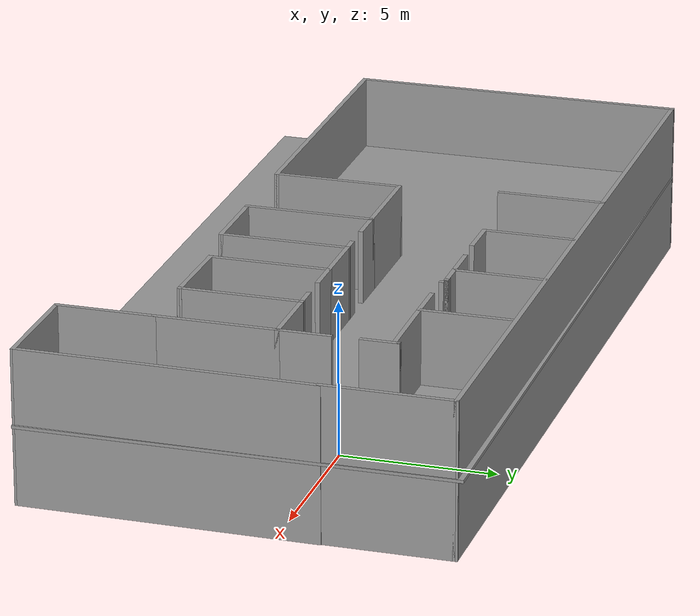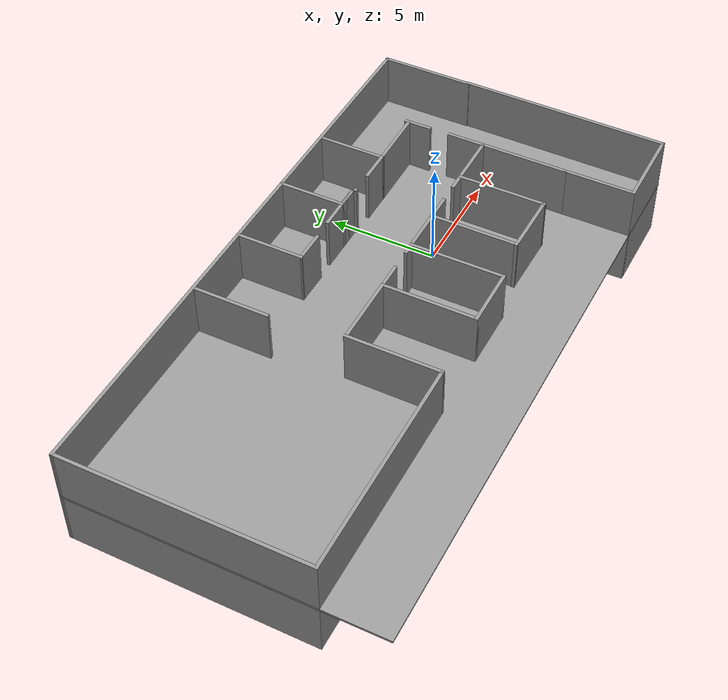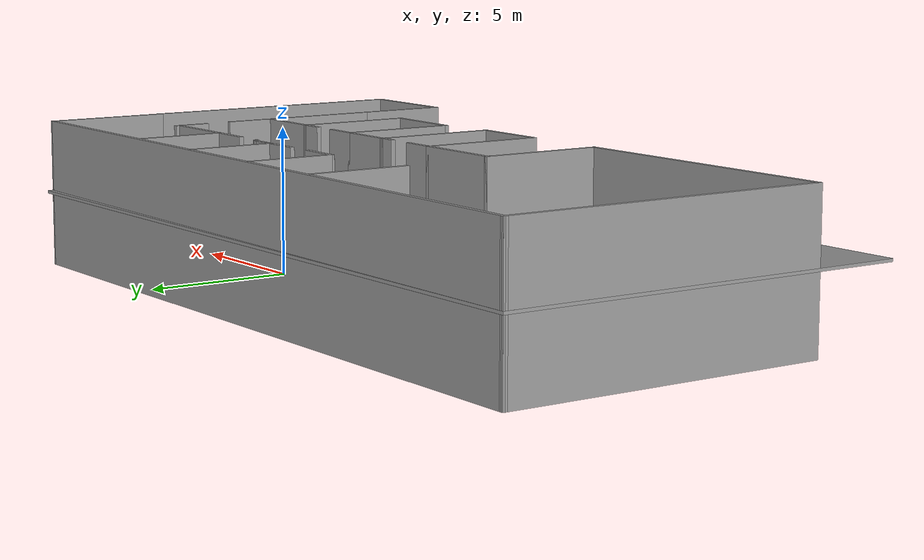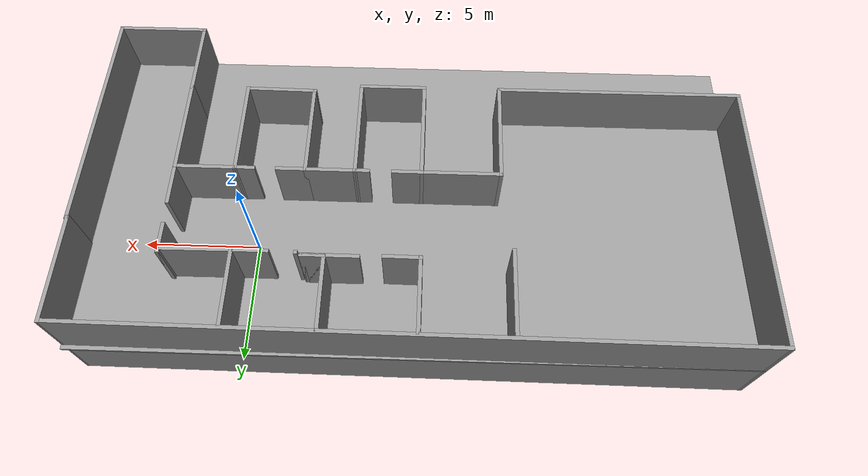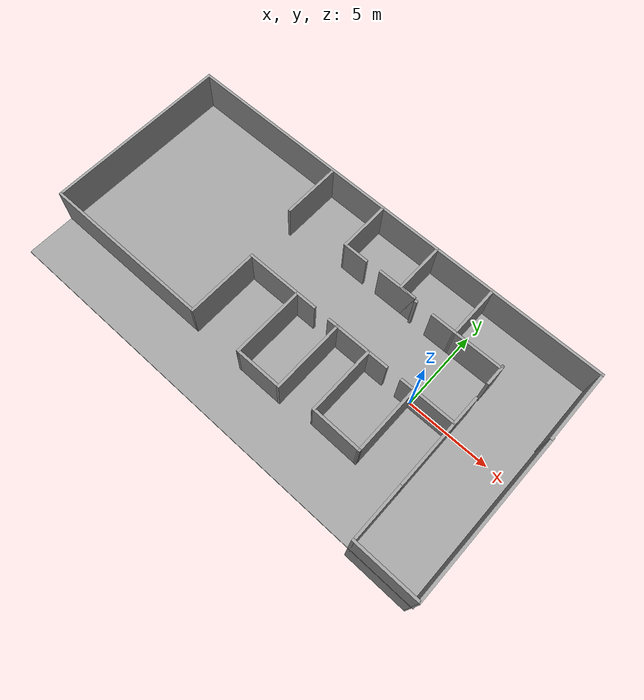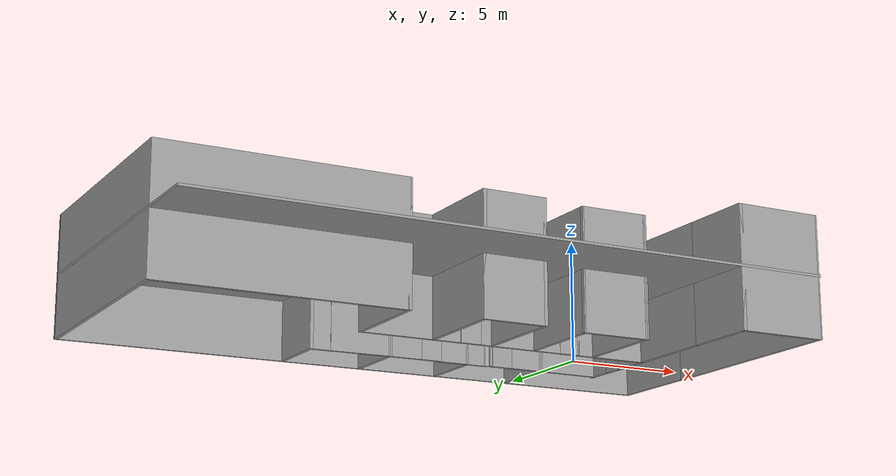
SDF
<?xml version='1.0'?>
<sdf version='1.6'>
  <model name='Bush_House_SW'>
    <pose frame=''>-6.86413 -1.22102 0 0 -0 0</pose>
    <link name='Door_0'>
      <collision name='Door_0_Collision'>
        <geometry>
          <box>
            <size>0.9 0.17 2</size>
          </box>
        </geometry>
        <pose frame=''>0 0 1 0 -0 0</pose>
      </collision>
      <visual name='Door_0_Visual'>
        <pose frame=''>0 0 1 0 -0 0</pose>
        <geometry>
          <box>
            <size>0.9 0.17 2</size>
          </box>
        </geometry>
        <material>
          <script>
            <uri>file://media/materials/scripts/gazebo.material</uri>
            <name>Gazebo/Grey</name>
          </script>
        </material>
      </visual>
      <pose frame=''>1.44722 0.128993 0 0 -0 0</pose>
    </link>
    <link name='Door_1'>
      <collision name='Door_1_Collision'>
        <geometry>
          <box>
            <size>0.9 0.17 2</size>
          </box>
        </geometry>
        <pose frame=''>0 0 1 0 -0 0</pose>
      </collision>
      <visual name='Door_1_Visual'>
        <pose frame=''>0 0 1 0 -0 0</pose>
        <geometry>
          <box>
            <size>0.9 0.17 2</size>
          </box>
        </geometry>
        <material>
          <script>
            <uri>file://media/materials/scripts/gazebo.material</uri>
            <name>Gazebo/Grey</name>
          </script>
        </material>
      </visual>
      <pose frame=''>5.96487 0.138665 0 0 -0 -3.1387</pose>
    </link>
    <link name='Door_4'>
      <collision name='Door_4_Collision'>
        <geometry>
          <box>
            <size>0.9 0.17 2</size>
          </box>
        </geometry>
        <pose frame=''>0 0 1 0 -0 0</pose>
      </collision>
      <visual name='Door_4_Visual'>
        <pose frame=''>0 0 1 0 -0 0</pose>
        <geometry>
          <box>
            <size>0.9 0.17 2</size>
          </box>
        </geometry>
        <material>
          <script>
            <uri>file://media/materials/scripts/gazebo.material</uri>
            <name>Gazebo/Grey</name>
          </script>
        </material>
      </visual>
      <pose frame=''>-3.21752 3.89519 0 0 -0 0</pose>
    </link>
    <link name='Door_5'>
      <collision name='Door_5_Collision'>
        <geometry>
          <box>
            <size>0.9 0.17 2</size>
          </box>
        </geometry>
        <pose frame=''>0 0 1 0 -0 0</pose>
      </collision>
      <visual name='Door_5_Visual'>
        <pose frame=''>0 0 1 0 -0 0</pose>
        <geometry>
          <box>
            <size>0.9 0.17 2</size>
          </box>
        </geometry>
        <material>
          <script>
            <uri>file://media/materials/scripts/gazebo.material</uri>
            <name>Gazebo/Grey</name>
          </script>
        </material>
      </visual>
      <pose frame=''>1.60947 3.76994 0 0 -0 0</pose>
    </link>
    <link name='Door_6'>
      <collision name='Door_6_Collision'>
        <geometry>
          <box>
            <size>0.925966 0.2 2</size>
          </box>
        </geometry>
        <pose frame=''>0 0 1 0 -0 0</pose>
      </collision>
      <visual name='Door_6_Visual'>
        <pose frame=''>0 0 1 0 -0 0</pose>
        <geometry>
          <box>
            <size>0.925966 0.2 2</size>
          </box>
        </geometry>
        <material>
          <script>
            <uri>file://media/materials/scripts/gazebo.material</uri>
            <name>Gazebo/Grey</name>
          </script>
        </material>
      </visual>
      <pose frame=''>4.88911 3.72219 0 0 0 -3.13904</pose>
    </link>
    <link name='Door_7'>
      <collision name='Door_7_Collision'>
        <geometry>
          <box>
            <size>0.9 0.17 2</size>
          </box>
        </geometry>
        <pose frame=''>0 0 1 0 -0 0</pose>
      </collision>
      <visual name='Door_7_Visual'>
        <pose frame=''>0 0 1 0 -0 0</pose>
        <geometry>
          <box>
            <size>0.9 0.17 2</size>
          </box>
        </geometry>
        <material>
          <script>
            <uri>file://media/materials/scripts/gazebo.material</uri>
            <name>Gazebo/Grey</name>
          </script>
        </material>
      </visual>
      <pose frame=''>9.46413 2.22202 0 0 -0 1.5781</pose>
    </link>
    <link name='Floor_0'>
      <collision name='Floor_0_Collision'>
        <geometry>
          <box>
            <size>26.4206 13.775 0.1</size>
          </box>
        </geometry>
        <pose frame=''>0 0 0.05 0 -0 0</pose>
      </collision>
      <visual name='Floor_0_Visual'>
        <pose frame=''>0 0 0.05 0 -0 0</pose>
        <geometry>
          <box>
            <size>26.4206 13.775 0.1</size>
          </box>
        </geometry>
        <material>
          <script>
            <uri>file://media/materials/scripts/gazebo.material</uri>
            <name>Gazebo/Grey</name>
          </script>
          <ambient>1 1 1 1</ambient>
        </material>
        <meta>
          <layer>1</layer>
        </meta>
      </visual>
      <pose frame=''>-0 -6.5e-05 2.5 0 -0 0</pose>
    </link>
    <link name='Wall_10'>
      <collision name='Wall_10_Collision'>
        <geometry>
          <box>
            <size>3.25 0.15 2.5</size>
          </box>
        </geometry>
        <pose frame=''>0 0 1.25 0 -0 0</pose>
      </collision>
      <visual name='Wall_10_Visual'>
        <pose frame=''>0 0 1.25 0 -0 0</pose>
        <geometry>
          <box>
            <size>3.25 0.15 2.5</size>
          </box>
        </geometry>
        <material>
          <script>
            <uri>file://media/materials/scripts/gazebo.material</uri>
            <name>Gazebo/Grey</name>
          </script>
          <ambient>1 1 1 1</ambient>
        </material>
        <meta>
          <layer>0</layer>
        </meta>
      </visual>
      <pose frame=''>-1.73481 0.138009 0 0 -0 0</pose>
    </link>
    <link name='Wall_100'>
      <collision name='Wall_100_Collision'>
        <geometry>
          <box>
            <size>2.74557 0.15 2.5</size>
          </box>
        </geometry>
        <pose frame=''>0 0 1.25 0 -0 0</pose>
      </collision>
      <visual name='Wall_100_Visual'>
        <pose frame=''>0 0 1.25 0 -0 0</pose>
        <geometry>
          <box>
            <size>2.74557 0.15 2.5</size>
          </box>
        </geometry>
        <material>
          <script>
            <uri>file://media/materials/scripts/gazebo.material</uri>
            <name>Gazebo/Grey</name>
          </script>
          <ambient>1 1 1 1</ambient>
        </material>
        <meta>
          <layer>1</layer>
        </meta>
      </visual>
      <pose frame=''>8.03611 3.70275 2.5 0 -0 0.005031</pose>
    </link>
    <link name='Wall_101'>
      <collision name='Wall_101_Collision'>
        <geometry>
          <box>
            <size>1.25 0.15 2.5</size>
          </box>
        </geometry>
        <pose frame=''>0 0 1.25 0 -0 0</pose>
      </collision>
      <visual name='Wall_101_Visual'>
        <pose frame=''>0 0 1.25 0 -0 0</pose>
        <geometry>
          <box>
            <size>1.25 0.15 2.5</size>
          </box>
        </geometry>
        <material>
          <script>
            <uri>file://media/materials/scripts/gazebo.material</uri>
            <name>Gazebo/Grey</name>
          </script>
          <ambient>1 1 1 1</ambient>
        </material>
        <meta>
          <layer>1</layer>
        </meta>
      </visual>
      <pose frame=''>0.365187 0.138009 2.5 0 -0 0</pose>
    </link>
    <link name='Wall_102'>
      <collision name='Wall_102_Collision'>
        <geometry>
          <box>
            <size>0.651972 0.15 2.5</size>
          </box>
        </geometry>
        <pose frame=''>0 0 1.25 0 -0 0</pose>
      </collision>
      <visual name='Wall_102_Visual'>
        <pose frame=''>0 0 1.25 0 -0 0</pose>
        <geometry>
          <box>
            <size>0.651972 0.15 2.5</size>
          </box>
        </geometry>
        <material>
          <script>
            <uri>file://media/materials/scripts/gazebo.material</uri>
            <name>Gazebo/Grey</name>
          </script>
          <ambient>1 1 1 1</ambient>
        </material>
        <meta>
          <layer>1</layer>
        </meta>
      </visual>
      <pose frame=''>2.16423 0.134475 2.5 0 -0 0.014081</pose>
    </link>
    <link name='Wall_103'>
      <collision name='Wall_103_Collision'>
        <geometry>
          <box>
            <size>1.25 0.15 2.5</size>
          </box>
        </geometry>
        <pose frame=''>0 0 1.25 0 -0 0</pose>
      </collision>
      <visual name='Wall_103_Visual'>
        <pose frame=''>0 0 1.25 0 -0 0</pose>
        <geometry>
          <box>
            <size>1.25 0.15 2.5</size>
          </box>
        </geometry>
        <material>
          <script>
            <uri>file://media/materials/scripts/gazebo.material</uri>
            <name>Gazebo/Grey</name>
          </script>
          <ambient>1 1 1 1</ambient>
        </material>
        <meta>
          <layer>1</layer>
        </meta>
      </visual>
      <pose frame=''>4.90753 0.138009 2.5 0 -0 0</pose>
    </link>
    <link name='Wall_104'>
      <collision name='Wall_104_Collision'>
        <geometry>
          <box>
            <size>0.85758 0.15 2.5</size>
          </box>
        </geometry>
        <pose frame=''>0 0 1.25 0 -0 0</pose>
      </collision>
      <visual name='Wall_104_Visual'>
        <pose frame=''>0 0 1.25 0 -0 0</pose>
        <geometry>
          <box>
            <size>0.85758 0.15 2.5</size>
          </box>
        </geometry>
        <material>
          <script>
            <uri>file://media/materials/scripts/gazebo.material</uri>
            <name>Gazebo/Grey</name>
          </script>
          <ambient>1 1 1 1</ambient>
        </material>
        <meta>
          <layer>1</layer>
        </meta>
      </visual>
      <pose frame=''>6.76142 0.134038 2.5 0 -0 0.011223</pose>
    </link>
    <link name='Wall_105'>
      <collision name='Wall_105_Collision'>
        <geometry>
          <box>
            <size>1.75 0.15 2.5</size>
          </box>
        </geometry>
        <pose frame=''>0 0 1.25 0 -0 0</pose>
      </collision>
      <visual name='Wall_105_Visual'>
        <pose frame=''>0 0 1.25 0 -0 0</pose>
        <geometry>
          <box>
            <size>1.75 0.15 2.5</size>
          </box>
        </geometry>
        <material>
          <script>
            <uri>file://media/materials/scripts/gazebo.material</uri>
            <name>Gazebo/Grey</name>
          </script>
          <ambient>1 1 1 1</ambient>
        </material>
        <meta>
          <layer>1</layer>
        </meta>
      </visual>
      <pose frame=''>9.46519 0.938009 2.5 0 -0 1.5708</pose>
    </link>
    <link name='Wall_106'>
      <collision name='Wall_106_Collision'>
        <geometry>
          <box>
            <size>1.25 0.15 2.5</size>
          </box>
        </geometry>
        <pose frame=''>0 0 1.25 0 -0 0</pose>
      </collision>
      <visual name='Wall_106_Visual'>
        <pose frame=''>0 0 1.25 0 -0 0</pose>
        <geometry>
          <box>
            <size>1.25 0.15 2.5</size>
          </box>
        </geometry>
        <material>
          <script>
            <uri>file://media/materials/scripts/gazebo.material</uri>
            <name>Gazebo/Grey</name>
          </script>
          <ambient>1 1 1 1</ambient>
        </material>
        <meta>
          <layer>1</layer>
        </meta>
      </visual>
      <pose frame=''>9.44039 3.27264 2.5 0 -0 1.5708</pose>
    </link>
    <link name='Wall_107'>
      <collision name='Wall_107_Collision'>
        <geometry>
          <box>
            <size>0.15 0.15 2.5</size>
          </box>
        </geometry>
        <pose frame=''>0 0 1.25 0 -0 0</pose>
      </collision>
      <visual name='Wall_107_Visual'>
        <pose frame=''>0 0 1.25 0 -0 0</pose>
        <geometry>
          <box>
            <size>0.15 0.15 2.5</size>
          </box>
        </geometry>
        <material>
          <script>
            <uri>file://media/materials/scripts/gazebo.material</uri>
            <name>Gazebo/Grey</name>
          </script>
          <ambient>1 1 1 1</ambient>
        </material>
        <meta>
          <layer>1</layer>
        </meta>
      </visual>
      <pose frame=''>9.4347 3.82264 2.5 0 -0 0</pose>
    </link>
    <link name='Wall_108'>
      <collision name='Wall_108_Collision'>
        <geometry>
          <box>
            <size>1.475 0.15 2.5</size>
          </box>
        </geometry>
        <pose frame=''>0 0 1.25 0 -0 0</pose>
      </collision>
      <visual name='Wall_108_Visual'>
        <pose frame=''>0 0 1.25 0 -0 0</pose>
        <geometry>
          <box>
            <size>1.475 0.15 2.5</size>
          </box>
        </geometry>
        <material>
          <script>
            <uri>file://media/materials/scripts/gazebo.material</uri>
            <name>Gazebo/Grey</name>
          </script>
          <ambient>1 1 1 1</ambient>
        </material>
        <meta>
          <layer>1</layer>
        </meta>
      </visual>
      <pose frame=''>6.07585 3.69622 2.5 0 -0 3.14159</pose>
    </link>
    <link name='Wall_109'>
      <collision name='Wall_109_Collision'>
        <geometry>
          <box>
            <size>0.15 0.15 2.5</size>
          </box>
        </geometry>
        <pose frame=''>0 0 1.25 0 -0 0</pose>
      </collision>
      <visual name='Wall_109_Visual'>
        <pose frame=''>0 0 1.25 0 -0 0</pose>
        <geometry>
          <box>
            <size>0.15 0.15 2.5</size>
          </box>
        </geometry>
        <material>
          <script>
            <uri>file://media/materials/scripts/gazebo.material</uri>
            <name>Gazebo/Grey</name>
          </script>
          <ambient>1 1 1 1</ambient>
        </material>
        <meta>
          <layer>1</layer>
        </meta>
      </visual>
      <pose frame=''>4.35279 3.71333 2.5 0 -0 0</pose>
    </link>
    <link name='Wall_11'>
      <collision name='Wall_11_Collision'>
        <geometry>
          <box>
            <size>4.25 0.15 2.5</size>
          </box>
        </geometry>
        <pose frame=''>0 0 1.25 0 -0 0</pose>
      </collision>
      <visual name='Wall_11_Visual'>
        <pose frame=''>0 0 1.25 0 -0 0</pose>
        <geometry>
          <box>
            <size>4.25 0.15 2.5</size>
          </box>
        </geometry>
        <material>
          <script>
            <uri>file://media/materials/scripts/gazebo.material</uri>
            <name>Gazebo/Grey</name>
          </script>
          <ambient>1 1 1 1</ambient>
        </material>
        <meta>
          <layer>0</layer>
        </meta>
      </visual>
      <pose frame=''>-0.184813 -1.91199 0 0 -0 -1.5708</pose>
    </link>
    <link name='Wall_110'>
      <collision name='Wall_110_Collision'>
        <geometry>
          <box>
            <size>1.50008 0.15 2.5</size>
          </box>
        </geometry>
        <pose frame=''>0 0 1.25 0 -0 0</pose>
      </collision>
      <visual name='Wall_110_Visual'>
        <pose frame=''>0 0 1.25 0 -0 0</pose>
        <geometry>
          <box>
            <size>1.50008 0.15 2.5</size>
          </box>
        </geometry>
        <material>
          <script>
            <uri>file://media/materials/scripts/gazebo.material</uri>
            <name>Gazebo/Grey</name>
          </script>
          <ambient>1 1 1 1</ambient>
        </material>
        <meta>
          <layer>1</layer>
        </meta>
      </visual>
      <pose frame=''>0.417575 3.78597 2.5 0 -0 -0.01055</pose>
    </link>
    <link name='Wall_111'>
      <collision name='Wall_111_Collision'>
        <geometry>
          <box>
            <size>2.25 0.15 2.5</size>
          </box>
        </geometry>
        <pose frame=''>0 0 1.25 0 -0 0</pose>
      </collision>
      <visual name='Wall_111_Visual'>
        <pose frame=''>0 0 1.25 0 -0 0</pose>
        <geometry>
          <box>
            <size>2.25 0.15 2.5</size>
          </box>
        </geometry>
        <material>
          <script>
            <uri>file://media/materials/scripts/gazebo.material</uri>
            <name>Gazebo/Grey</name>
          </script>
          <ambient>1 1 1 1</ambient>
        </material>
        <meta>
          <layer>1</layer>
        </meta>
      </visual>
      <pose frame=''>3.10253 3.81133 2.5 0 -0 0</pose>
    </link>
    <link name='Wall_112'>
      <collision name='Wall_112_Collision'>
        <geometry>
          <box>
            <size>0.15 0.15 2.5</size>
          </box>
        </geometry>
        <pose frame=''>0 0 1.25 0 -0 0</pose>
      </collision>
      <visual name='Wall_112_Visual'>
        <pose frame=''>0 0 1.25 0 -0 0</pose>
        <geometry>
          <box>
            <size>0.15 0.15 2.5</size>
          </box>
        </geometry>
        <material>
          <script>
            <uri>file://media/materials/scripts/gazebo.material</uri>
            <name>Gazebo/Grey</name>
          </script>
          <ambient>1 1 1 1</ambient>
        </material>
        <meta>
          <layer>1</layer>
        </meta>
      </visual>
      <pose frame=''>4.15253 3.81133 2.5 0 -0 0</pose>
    </link>
    <link name='Wall_113'>
      <collision name='Wall_113_Collision'>
        <geometry>
          <box>
            <size>1 0.15 2.5</size>
          </box>
        </geometry>
        <pose frame=''>0 0 1.25 0 -0 0</pose>
      </collision>
      <visual name='Wall_113_Visual'>
        <pose frame=''>0 0 1.25 0 -0 0</pose>
        <geometry>
          <box>
            <size>1 0.15 2.5</size>
          </box>
        </geometry>
        <material>
          <script>
            <uri>file://media/materials/scripts/gazebo.material</uri>
            <name>Gazebo/Grey</name>
          </script>
          <ambient>1 1 1 1</ambient>
        </material>
        <meta>
          <layer>1</layer>
        </meta>
      </visual>
      <pose frame=''>3.72753 3.81133 2.5 0 -0 3.14159</pose>
    </link>
    <link name='Wall_114'>
      <collision name='Wall_114_Collision'>
        <geometry>
          <box>
            <size>3 0.15 2.5</size>
          </box>
        </geometry>
        <pose frame=''>0 0 1.25 0 -0 0</pose>
      </collision>
      <visual name='Wall_114_Visual'>
        <pose frame=''>0 0 1.25 0 -0 0</pose>
        <geometry>
          <box>
            <size>3 0.15 2.5</size>
          </box>
        </geometry>
        <material>
          <script>
            <uri>file://media/materials/scripts/gazebo.material</uri>
            <name>Gazebo/Grey</name>
          </script>
          <ambient>1 1 1 1</ambient>
        </material>
        <meta>
          <layer>1</layer>
        </meta>
      </visual>
      <pose frame=''>3.30253 5.23633 2.5 0 -0 1.5708</pose>
    </link>
    <link name='Wall_115'>
      <collision name='Wall_115_Collision'>
        <geometry>
          <box>
            <size>0.372948 0.15 2.5</size>
          </box>
        </geometry>
        <pose frame=''>0 0 1.25 0 -0 0</pose>
      </collision>
      <visual name='Wall_115_Visual'>
        <pose frame=''>0 0 1.25 0 -0 0</pose>
        <geometry>
          <box>
            <size>0.372948 0.15 2.5</size>
          </box>
        </geometry>
        <material>
          <script>
            <uri>file://media/materials/scripts/gazebo.material</uri>
            <name>Gazebo/Grey</name>
          </script>
          <ambient>1 1 1 1</ambient>
        </material>
        <meta>
          <layer>0</layer>
        </meta>
      </visual>
      <pose frame=''>4.25266 3.76233 0 0 -0 -0.455084</pose>
    </link>
    <link name='Wall_117'>
      <collision name='Wall_117_Collision'>
        <geometry>
          <box>
            <size>2.68565 0.15 2.5</size>
          </box>
        </geometry>
        <pose frame=''>0 0 1.25 0 -0 0</pose>
      </collision>
      <visual name='Wall_117_Visual'>
        <pose frame=''>0 0 1.25 0 -0 0</pose>
        <geometry>
          <box>
            <size>2.68565 0.15 2.5</size>
          </box>
        </geometry>
        <material>
          <script>
            <uri>file://media/materials/scripts/gazebo.material</uri>
            <name>Gazebo/Grey</name>
          </script>
          <ambient>1 1 1 1</ambient>
        </material>
        <meta>
          <layer>0</layer>
        </meta>
      </visual>
      <pose frame=''>-1.52468 3.83124 0 0 -0 -0.030098</pose>
    </link>
    <link name='Wall_12'>
      <collision name='Wall_12_Collision'>
        <geometry>
          <box>
            <size>2.75 0.15 2.5</size>
          </box>
        </geometry>
        <pose frame=''>0 0 1.25 0 -0 0</pose>
      </collision>
      <visual name='Wall_12_Visual'>
        <pose frame=''>0 0 1.25 0 -0 0</pose>
        <geometry>
          <box>
            <size>2.75 0.15 2.5</size>
          </box>
        </geometry>
        <material>
          <script>
            <uri>file://media/materials/scripts/gazebo.material</uri>
            <name>Gazebo/Grey</name>
          </script>
          <ambient>1 1 1 1</ambient>
        </material>
        <meta>
          <layer>0</layer>
        </meta>
      </visual>
      <pose frame=''>1.11519 -3.96199 0 0 -0 0</pose>
    </link>
    <link name='Wall_13'>
      <collision name='Wall_13_Collision'>
        <geometry>
          <box>
            <size>4.25 0.15 2.5</size>
          </box>
        </geometry>
        <pose frame=''>0 0 1.25 0 -0 0</pose>
      </collision>
      <visual name='Wall_13_Visual'>
        <pose frame=''>0 0 1.25 0 -0 0</pose>
        <geometry>
          <box>
            <size>4.25 0.15 2.5</size>
          </box>
        </geometry>
        <material>
          <script>
            <uri>file://media/materials/scripts/gazebo.material</uri>
            <name>Gazebo/Grey</name>
          </script>
          <ambient>1 1 1 1</ambient>
        </material>
        <meta>
          <layer>0</layer>
        </meta>
      </visual>
      <pose frame=''>2.41519 -1.91199 0 0 -0 1.5708</pose>
    </link>
    <link name='Wall_14'>
      <collision name='Wall_14_Collision'>
        <geometry>
          <box>
            <size>2.07919 0.15 2.5</size>
          </box>
        </geometry>
        <pose frame=''>0 0 1.25 0 -0 0</pose>
      </collision>
      <visual name='Wall_14_Visual'>
        <pose frame=''>0 0 1.25 0 -0 0</pose>
        <geometry>
          <box>
            <size>2.07919 0.15 2.5</size>
          </box>
        </geometry>
        <material>
          <script>
            <uri>file://media/materials/scripts/gazebo.material</uri>
            <name>Gazebo/Grey</name>
          </script>
          <ambient>1 1 1 1</ambient>
        </material>
        <meta>
          <layer>0</layer>
        </meta>
      </visual>
      <pose frame=''>3.37979 0.138009 0 0 -0 0</pose>
    </link>
    <link name='Wall_15'>
      <collision name='Wall_15_Collision'>
        <geometry>
          <box>
            <size>3.96055 0.15 2.5</size>
          </box>
        </geometry>
        <pose frame=''>0 0 1.25 0 -0 0</pose>
      </collision>
      <visual name='Wall_15_Visual'>
        <pose frame=''>0 0 1.25 0 -0 0</pose>
        <geometry>
          <box>
            <size>3.96055 0.15 2.5</size>
          </box>
        </geometry>
        <material>
          <script>
            <uri>file://media/materials/scripts/gazebo.material</uri>
            <name>Gazebo/Grey</name>
          </script>
          <ambient>1 1 1 1</ambient>
        </material>
        <meta>
          <layer>0</layer>
        </meta>
      </visual>
      <pose frame=''>4.35746 -1.76727 0 0 -0 -1.57084</pose>
    </link>
    <link name='Wall_16'>
      <collision name='Wall_16_Collision'>
        <geometry>
          <box>
            <size>2.92123 0.15 2.5</size>
          </box>
        </geometry>
        <pose frame=''>0 0 1.25 0 -0 0</pose>
      </collision>
      <visual name='Wall_16_Visual'>
        <pose frame=''>0 0 1.25 0 -0 0</pose>
        <geometry>
          <box>
            <size>2.92123 0.15 2.5</size>
          </box>
        </geometry>
        <material>
          <script>
            <uri>file://media/materials/scripts/gazebo.material</uri>
            <name>Gazebo/Grey</name>
          </script>
          <ambient>1 1 1 1</ambient>
        </material>
        <meta>
          <layer>0</layer>
        </meta>
      </visual>
      <pose frame=''>5.72971 -3.69227 0 0 -0 -0.014236</pose>
    </link>
    <link name='Wall_17'>
      <collision name='Wall_17_Collision'>
        <geometry>
          <box>
            <size>4 0.15 2.5</size>
          </box>
        </geometry>
        <pose frame=''>0 0 1.25 0 -0 0</pose>
      </collision>
      <visual name='Wall_17_Visual'>
        <pose frame=''>0 0 1.25 0 -0 0</pose>
        <geometry>
          <box>
            <size>4 0.15 2.5</size>
          </box>
        </geometry>
        <material>
          <script>
            <uri>file://media/materials/scripts/gazebo.material</uri>
            <name>Gazebo/Grey</name>
          </script>
          <ambient>1 1 1 1</ambient>
        </material>
        <meta>
          <layer>0</layer>
        </meta>
      </visual>
      <pose frame=''>7.11519 -1.78699 0 0 -0 1.5708</pose>
    </link>
    <link name='Wall_18'>
      <collision name='Wall_18_Collision'>
        <geometry>
          <box>
            <size>2.5 0.15 2.5</size>
          </box>
        </geometry>
        <pose frame=''>0 0 1.25 0 -0 0</pose>
      </collision>
      <visual name='Wall_18_Visual'>
        <pose frame=''>0 0 1.25 0 -0 0</pose>
        <geometry>
          <box>
            <size>2.5 0.15 2.5</size>
          </box>
        </geometry>
        <material>
          <script>
            <uri>file://media/materials/scripts/gazebo.material</uri>
            <name>Gazebo/Grey</name>
          </script>
          <ambient>1 1 1 1</ambient>
        </material>
        <meta>
          <layer>0</layer>
        </meta>
      </visual>
      <pose frame=''>8.29019 0.138009 0 0 -0 0</pose>
    </link>
    <link name='Wall_19'>
      <collision name='Wall_19_Collision'>
        <geometry>
          <box>
            <size>4 0.15 2.5</size>
          </box>
        </geometry>
        <pose frame=''>0 0 1.25 0 -0 0</pose>
      </collision>
      <visual name='Wall_19_Visual'>
        <pose frame=''>0 0 1.25 0 -0 0</pose>
        <geometry>
          <box>
            <size>4 0.15 2.5</size>
          </box>
        </geometry>
        <material>
          <script>
            <uri>file://media/materials/scripts/gazebo.material</uri>
            <name>Gazebo/Grey</name>
          </script>
          <ambient>1 1 1 1</ambient>
        </material>
        <meta>
          <layer>0</layer>
        </meta>
      </visual>
      <pose frame=''>9.46519 -1.78699 0 0 -0 -1.5708</pose>
    </link>
    <link name='Wall_20'>
      <collision name='Wall_20_Collision'>
        <geometry>
          <box>
            <size>3.25 0.15 2.5</size>
          </box>
        </geometry>
        <pose frame=''>0 0 1.25 0 -0 0</pose>
      </collision>
      <visual name='Wall_20_Visual'>
        <pose frame=''>0 0 1.25 0 -0 0</pose>
        <geometry>
          <box>
            <size>3.25 0.15 2.5</size>
          </box>
        </geometry>
        <material>
          <script>
            <uri>file://media/materials/scripts/gazebo.material</uri>
            <name>Gazebo/Grey</name>
          </script>
          <ambient>1 1 1 1</ambient>
        </material>
        <meta>
          <layer>0</layer>
        </meta>
      </visual>
      <pose frame=''>9.46519 -5.26199 0 0 -0 -1.5708</pose>
    </link>
    <link name='Wall_21'>
      <collision name='Wall_21_Collision'>
        <geometry>
          <box>
            <size>3.75 0.15 2.5</size>
          </box>
        </geometry>
        <pose frame=''>0 0 1.25 0 -0 0</pose>
      </collision>
      <visual name='Wall_21_Visual'>
        <pose frame=''>0 0 1.25 0 -0 0</pose>
        <geometry>
          <box>
            <size>3.75 0.15 2.5</size>
          </box>
        </geometry>
        <material>
          <script>
            <uri>file://media/materials/scripts/gazebo.material</uri>
            <name>Gazebo/Grey</name>
          </script>
          <ambient>1 1 1 1</ambient>
        </material>
        <meta>
          <layer>0</layer>
        </meta>
      </visual>
      <pose frame=''>11.2652 -6.81199 0 0 -0 0</pose>
    </link>
    <link name='Wall_22'>
      <collision name='Wall_22_Collision'>
        <geometry>
          <box>
            <size>9.5 0.15 2.5</size>
          </box>
        </geometry>
        <pose frame=''>0 0 1.25 0 -0 0</pose>
      </collision>
      <visual name='Wall_22_Visual'>
        <pose frame=''>0 0 1.25 0 -0 0</pose>
        <geometry>
          <box>
            <size>9.5 0.15 2.5</size>
          </box>
        </geometry>
        <material>
          <script>
            <uri>file://media/materials/scripts/gazebo.material</uri>
            <name>Gazebo/Grey</name>
          </script>
          <ambient>1 1 1 1</ambient>
        </material>
        <meta>
          <layer>0</layer>
        </meta>
      </visual>
      <pose frame=''>13.1 -2.13699 0 0 -0 1.56336</pose>
    </link>
    <link name='Wall_24'>
      <collision name='Wall_24_Collision'>
        <geometry>
          <box>
            <size>26.3854 0.15 2.5</size>
          </box>
        </geometry>
        <pose frame=''>0 0 1.25 0 -0 0</pose>
      </collision>
      <visual name='Wall_24_Visual'>
        <pose frame=''>0 0 1.25 0 -0 0</pose>
        <geometry>
          <box>
            <size>26.3854 0.15 2.5</size>
          </box>
        </geometry>
        <material>
          <script>
            <uri>file://media/materials/scripts/gazebo.material</uri>
            <name>Gazebo/Grey</name>
          </script>
          <ambient>1 1 1 1</ambient>
        </material>
        <meta>
          <layer>0</layer>
        </meta>
      </visual>
      <pose frame=''>-0.017422 6.72497 0 0 -0 -0.006629</pose>
    </link>
    <link name='Wall_25'>
      <collision name='Wall_25_Collision'>
        <geometry>
          <box>
            <size>0.15 0.15 2.5</size>
          </box>
        </geometry>
        <pose frame=''>0 0 1.25 0 -0 0</pose>
      </collision>
      <visual name='Wall_25_Visual'>
        <pose frame=''>0 0 1.25 0 -0 0</pose>
        <geometry>
          <box>
            <size>0.15 0.15 2.5</size>
          </box>
        </geometry>
        <material>
          <script>
            <uri>file://media/materials/scripts/gazebo.material</uri>
            <name>Gazebo/Grey</name>
          </script>
          <ambient>1 1 1 1</ambient>
        </material>
        <meta>
          <layer>0</layer>
        </meta>
      </visual>
      <pose frame=''>13.1 6.63801 0 0 -0 0</pose>
    </link>
    <link name='Wall_26'>
      <collision name='Wall_26_Collision'>
        <geometry>
          <box>
            <size>0.15 0.15 2.5</size>
          </box>
        </geometry>
        <pose frame=''>0 0 1.25 0 -0 0</pose>
      </collision>
      <visual name='Wall_26_Visual'>
        <pose frame=''>0 0 1.25 0 -0 0</pose>
        <geometry>
          <box>
            <size>0.15 0.15 2.5</size>
          </box>
        </geometry>
        <material>
          <script>
            <uri>file://media/materials/scripts/gazebo.material</uri>
            <name>Gazebo/Grey</name>
          </script>
          <ambient>1 1 1 1</ambient>
        </material>
        <meta>
          <layer>0</layer>
        </meta>
      </visual>
      <pose frame=''>13.1 6.63801 0 0 -0 0</pose>
    </link>
    <link name='Wall_27'>
      <collision name='Wall_27_Collision'>
        <geometry>
          <box>
            <size>4.25 0.15 2.5</size>
          </box>
        </geometry>
        <pose frame=''>0 0 1.25 0 -0 0</pose>
      </collision>
      <visual name='Wall_27_Visual'>
        <pose frame=''>0 0 1.25 0 -0 0</pose>
        <geometry>
          <box>
            <size>4.25 0.15 2.5</size>
          </box>
        </geometry>
        <material>
          <script>
            <uri>file://media/materials/scripts/gazebo.material</uri>
            <name>Gazebo/Grey</name>
          </script>
          <ambient>1 1 1 1</ambient>
        </material>
        <meta>
          <layer>0</layer>
        </meta>
      </visual>
      <pose frame=''>13.1 4.58801 0 0 -0 -1.5708</pose>
    </link>
    <link name='Wall_29'>
      <collision name='Wall_29_Collision'>
        <geometry>
          <box>
            <size>3 0.15 2.5</size>
          </box>
        </geometry>
        <pose frame=''>0 0 1.25 0 -0 0</pose>
      </collision>
      <visual name='Wall_29_Visual'>
        <pose frame=''>0 0 1.25 0 -0 0</pose>
        <geometry>
          <box>
            <size>3 0.15 2.5</size>
          </box>
        </geometry>
        <material>
          <script>
            <uri>file://media/materials/scripts/gazebo.material</uri>
            <name>Gazebo/Grey</name>
          </script>
          <ambient>1 1 1 1</ambient>
        </material>
        <meta>
          <layer>0</layer>
        </meta>
      </visual>
      <pose frame=''>-3.7009 5.30819 0 0 -0 -1.5708</pose>
    </link>
    <link name='Wall_33'>
      <collision name='Wall_33_Collision'>
        <geometry>
          <box>
            <size>3 0.15 2.5</size>
          </box>
        </geometry>
        <pose frame=''>0 0 1.25 0 -0 0</pose>
      </collision>
      <visual name='Wall_33_Visual'>
        <pose frame=''>0 0 1.25 0 -0 0</pose>
        <geometry>
          <box>
            <size>3 0.15 2.5</size>
          </box>
        </geometry>
        <material>
          <script>
            <uri>file://media/materials/scripts/gazebo.material</uri>
            <name>Gazebo/Grey</name>
          </script>
          <ambient>1 1 1 1</ambient>
        </material>
        <meta>
          <layer>0</layer>
        </meta>
      </visual>
      <pose frame=''>-0.257426 5.21809 0 0 -0 -1.5708</pose>
    </link>
    <link name='Wall_37'>
      <collision name='Wall_37_Collision'>
        <geometry>
          <box>
            <size>3.01306 0.15 2.5</size>
          </box>
        </geometry>
        <pose frame=''>0 0 1.25 0 -0 0</pose>
      </collision>
      <visual name='Wall_37_Visual'>
        <pose frame=''>0 0 1.25 0 -0 0</pose>
        <geometry>
          <box>
            <size>3.01306 0.15 2.5</size>
          </box>
        </geometry>
        <material>
          <script>
            <uri>file://media/materials/scripts/gazebo.material</uri>
            <name>Gazebo/Grey</name>
          </script>
          <ambient>1 1 1 1</ambient>
        </material>
        <meta>
          <layer>0</layer>
        </meta>
      </visual>
      <pose frame=''>6.73611 5.12775 0 0 -0 -1.56924</pose>
    </link>
    <link name='Wall_38'>
      <collision name='Wall_38_Collision'>
        <geometry>
          <box>
            <size>2.74557 0.15 2.5</size>
          </box>
        </geometry>
        <pose frame=''>0 0 1.25 0 -0 0</pose>
      </collision>
      <visual name='Wall_38_Visual'>
        <pose frame=''>0 0 1.25 0 -0 0</pose>
        <geometry>
          <box>
            <size>2.74557 0.15 2.5</size>
          </box>
        </geometry>
        <material>
          <script>
            <uri>file://media/materials/scripts/gazebo.material</uri>
            <name>Gazebo/Grey</name>
          </script>
          <ambient>1 1 1 1</ambient>
        </material>
        <meta>
          <layer>0</layer>
        </meta>
      </visual>
      <pose frame=''>8.03611 3.70275 0 0 -0 0.005031</pose>
    </link>
    <link name='Wall_40'>
      <collision name='Wall_40_Collision'>
        <geometry>
          <box>
            <size>1.25 0.15 2.5</size>
          </box>
        </geometry>
        <pose frame=''>0 0 1.25 0 -0 0</pose>
      </collision>
      <visual name='Wall_40_Visual'>
        <pose frame=''>0 0 1.25 0 -0 0</pose>
        <geometry>
          <box>
            <size>1.25 0.15 2.5</size>
          </box>
        </geometry>
        <material>
          <script>
            <uri>file://media/materials/scripts/gazebo.material</uri>
            <name>Gazebo/Grey</name>
          </script>
          <ambient>1 1 1 1</ambient>
        </material>
        <meta>
          <layer>0</layer>
        </meta>
      </visual>
      <pose frame=''>0.365187 0.138009 0 0 -0 0</pose>
    </link>
    <link name='Wall_43'>
      <collision name='Wall_43_Collision'>
        <geometry>
          <box>
            <size>0.651972 0.15 2.5</size>
          </box>
        </geometry>
        <pose frame=''>0 0 1.25 0 -0 0</pose>
      </collision>
      <visual name='Wall_43_Visual'>
        <pose frame=''>0 0 1.25 0 -0 0</pose>
        <geometry>
          <box>
            <size>0.651972 0.15 2.5</size>
          </box>
        </geometry>
        <material>
          <script>
            <uri>file://media/materials/scripts/gazebo.material</uri>
            <name>Gazebo/Grey</name>
          </script>
          <ambient>1 1 1 1</ambient>
        </material>
        <meta>
          <layer>0</layer>
        </meta>
      </visual>
      <pose frame=''>2.16423 0.134475 0 0 -0 0.014081</pose>
    </link>
    <link name='Wall_45'>
      <collision name='Wall_45_Collision'>
        <geometry>
          <box>
            <size>1.25 0.15 2.5</size>
          </box>
        </geometry>
        <pose frame=''>0 0 1.25 0 -0 0</pose>
      </collision>
      <visual name='Wall_45_Visual'>
        <pose frame=''>0 0 1.25 0 -0 0</pose>
        <geometry>
          <box>
            <size>1.25 0.15 2.5</size>
          </box>
        </geometry>
        <material>
          <script>
            <uri>file://media/materials/scripts/gazebo.material</uri>
            <name>Gazebo/Grey</name>
          </script>
          <ambient>1 1 1 1</ambient>
        </material>
        <meta>
          <layer>0</layer>
        </meta>
      </visual>
      <pose frame=''>4.90753 0.138009 0 0 -0 0</pose>
    </link>
    <link name='Wall_47'>
      <collision name='Wall_47_Collision'>
        <geometry>
          <box>
            <size>0.85758 0.15 2.5</size>
          </box>
        </geometry>
        <pose frame=''>0 0 1.25 0 -0 0</pose>
      </collision>
      <visual name='Wall_47_Visual'>
        <pose frame=''>0 0 1.25 0 -0 0</pose>
        <geometry>
          <box>
            <size>0.85758 0.15 2.5</size>
          </box>
        </geometry>
        <material>
          <script>
            <uri>file://media/materials/scripts/gazebo.material</uri>
            <name>Gazebo/Grey</name>
          </script>
          <ambient>1 1 1 1</ambient>
        </material>
        <meta>
          <layer>0</layer>
        </meta>
      </visual>
      <pose frame=''>6.76142 0.134038 0 0 -0 0.011223</pose>
    </link>
    <link name='Wall_49'>
      <collision name='Wall_49_Collision'>
        <geometry>
          <box>
            <size>1.75 0.15 2.5</size>
          </box>
        </geometry>
        <pose frame=''>0 0 1.25 0 -0 0</pose>
      </collision>
      <visual name='Wall_49_Visual'>
        <pose frame=''>0 0 1.25 0 -0 0</pose>
        <geometry>
          <box>
            <size>1.75 0.15 2.5</size>
          </box>
        </geometry>
        <material>
          <script>
            <uri>file://media/materials/scripts/gazebo.material</uri>
            <name>Gazebo/Grey</name>
          </script>
          <ambient>1 1 1 1</ambient>
        </material>
        <meta>
          <layer>0</layer>
        </meta>
      </visual>
      <pose frame=''>9.46519 0.938009 0 0 -0 1.5708</pose>
    </link>
    <link name='Wall_53'>
      <collision name='Wall_53_Collision'>
        <geometry>
          <box>
            <size>1.25 0.15 2.5</size>
          </box>
        </geometry>
        <pose frame=''>0 0 1.25 0 -0 0</pose>
      </collision>
      <visual name='Wall_53_Visual'>
        <pose frame=''>0 0 1.25 0 -0 0</pose>
        <geometry>
          <box>
            <size>1.25 0.15 2.5</size>
          </box>
        </geometry>
        <material>
          <script>
            <uri>file://media/materials/scripts/gazebo.material</uri>
            <name>Gazebo/Grey</name>
          </script>
          <ambient>1 1 1 1</ambient>
        </material>
        <meta>
          <layer>0</layer>
        </meta>
      </visual>
      <pose frame=''>9.44039 3.27264 0 0 -0 1.5708</pose>
    </link>
    <link name='Wall_56'>
      <collision name='Wall_56_Collision'>
        <geometry>
          <box>
            <size>0.15 0.15 2.5</size>
          </box>
        </geometry>
        <pose frame=''>0 0 1.25 0 -0 0</pose>
      </collision>
      <visual name='Wall_56_Visual'>
        <pose frame=''>0 0 1.25 0 -0 0</pose>
        <geometry>
          <box>
            <size>0.15 0.15 2.5</size>
          </box>
        </geometry>
        <material>
          <script>
            <uri>file://media/materials/scripts/gazebo.material</uri>
            <name>Gazebo/Grey</name>
          </script>
          <ambient>1 1 1 1</ambient>
        </material>
        <meta>
          <layer>0</layer>
        </meta>
      </visual>
      <pose frame=''>9.4347 3.82264 0 0 -0 0</pose>
    </link>
    <link name='Wall_58'>
      <collision name='Wall_58_Collision'>
        <geometry>
          <box>
            <size>1.475 0.15 2.5</size>
          </box>
        </geometry>
        <pose frame=''>0 0 1.25 0 -0 0</pose>
      </collision>
      <visual name='Wall_58_Visual'>
        <pose frame=''>0 0 1.25 0 -0 0</pose>
        <geometry>
          <box>
            <size>1.475 0.15 2.5</size>
          </box>
        </geometry>
        <material>
          <script>
            <uri>file://media/materials/scripts/gazebo.material</uri>
            <name>Gazebo/Grey</name>
          </script>
          <ambient>1 1 1 1</ambient>
        </material>
        <meta>
          <layer>0</layer>
        </meta>
      </visual>
      <pose frame=''>6.07585 3.69622 0 0 -0 3.14159</pose>
    </link>
    <link name='Wall_66'>
      <collision name='Wall_66_Collision'>
        <geometry>
          <box>
            <size>0.15 0.15 2.5</size>
          </box>
        </geometry>
        <pose frame=''>0 0 1.25 0 -0 0</pose>
      </collision>
      <visual name='Wall_66_Visual'>
        <pose frame=''>0 0 1.25 0 -0 0</pose>
        <geometry>
          <box>
            <size>0.15 0.15 2.5</size>
          </box>
        </geometry>
        <material>
          <script>
            <uri>file://media/materials/scripts/gazebo.material</uri>
            <name>Gazebo/Grey</name>
          </script>
          <ambient>1 1 1 1</ambient>
        </material>
        <meta>
          <layer>0</layer>
        </meta>
      </visual>
      <pose frame=''>4.35279 3.71333 0 0 -0 0</pose>
    </link>
    <link name='Wall_68'>
      <collision name='Wall_68_Collision'>
        <geometry>
          <box>
            <size>1.50008 0.15 2.5</size>
          </box>
        </geometry>
        <pose frame=''>0 0 1.25 0 -0 0</pose>
      </collision>
      <visual name='Wall_68_Visual'>
        <pose frame=''>0 0 1.25 0 -0 0</pose>
        <geometry>
          <box>
            <size>1.50008 0.15 2.5</size>
          </box>
        </geometry>
        <material>
          <script>
            <uri>file://media/materials/scripts/gazebo.material</uri>
            <name>Gazebo/Grey</name>
          </script>
          <ambient>1 1 1 1</ambient>
        </material>
        <meta>
          <layer>0</layer>
        </meta>
      </visual>
      <pose frame=''>0.417574 3.78597 0 0 -0 -0.01055</pose>
    </link>
    <link name='Wall_7'>
      <collision name='Wall_7_Collision'>
        <geometry>
          <box>
            <size>10.9239 0.15 2.5</size>
          </box>
        </geometry>
        <pose frame=''>0 0 1.25 0 -0 0</pose>
      </collision>
      <visual name='Wall_7_Visual'>
        <pose frame=''>0 0 1.25 0 -0 0</pose>
        <geometry>
          <box>
            <size>10.9239 0.15 2.5</size>
          </box>
        </geometry>
        <material>
          <script>
            <uri>file://media/materials/scripts/gazebo.material</uri>
            <name>Gazebo/Grey</name>
          </script>
          <ambient>1 1 1 1</ambient>
        </material>
        <meta>
          <layer>0</layer>
        </meta>
      </visual>
      <pose frame=''>-13.1348 1.42497 0 0 -0 -1.5708</pose>
    </link>
    <link name='Wall_72'>
      <collision name='Wall_72_Collision'>
        <geometry>
          <box>
            <size>2.25 0.15 2.5</size>
          </box>
        </geometry>
        <pose frame=''>0 0 1.25 0 -0 0</pose>
      </collision>
      <visual name='Wall_72_Visual'>
        <pose frame=''>0 0 1.25 0 -0 0</pose>
        <geometry>
          <box>
            <size>2.25 0.15 2.5</size>
          </box>
        </geometry>
        <material>
          <script>
            <uri>file://media/materials/scripts/gazebo.material</uri>
            <name>Gazebo/Grey</name>
          </script>
          <ambient>1 1 1 1</ambient>
        </material>
        <meta>
          <layer>0</layer>
        </meta>
      </visual>
      <pose frame=''>3.10253 3.81133 0 0 -0 0</pose>
    </link>
    <link name='Wall_73'>
      <collision name='Wall_73_Collision'>
        <geometry>
          <box>
            <size>0.15 0.15 2.5</size>
          </box>
        </geometry>
        <pose frame=''>0 0 1.25 0 -0 0</pose>
      </collision>
      <visual name='Wall_73_Visual'>
        <pose frame=''>0 0 1.25 0 -0 0</pose>
        <geometry>
          <box>
            <size>0.15 0.15 2.5</size>
          </box>
        </geometry>
        <material>
          <script>
            <uri>file://media/materials/scripts/gazebo.material</uri>
            <name>Gazebo/Grey</name>
          </script>
          <ambient>1 1 1 1</ambient>
        </material>
        <meta>
          <layer>0</layer>
        </meta>
      </visual>
      <pose frame=''>4.15253 3.81133 0 0 -0 0</pose>
    </link>
    <link name='Wall_75'>
      <collision name='Wall_75_Collision'>
        <geometry>
          <box>
            <size>3 0.15 2.5</size>
          </box>
        </geometry>
        <pose frame=''>0 0 1.25 0 -0 0</pose>
      </collision>
      <visual name='Wall_75_Visual'>
        <pose frame=''>0 0 1.25 0 -0 0</pose>
        <geometry>
          <box>
            <size>3 0.15 2.5</size>
          </box>
        </geometry>
        <material>
          <script>
            <uri>file://media/materials/scripts/gazebo.material</uri>
            <name>Gazebo/Grey</name>
          </script>
          <ambient>1 1 1 1</ambient>
        </material>
        <meta>
          <layer>0</layer>
        </meta>
      </visual>
      <pose frame=''>3.30253 5.23633 0 0 -0 1.5708</pose>
    </link>
    <link name='Wall_77'>
      <collision name='Wall_77_Collision'>
        <geometry>
          <box>
            <size>10.9239 0.15 2.5</size>
          </box>
        </geometry>
        <pose frame=''>0 0 1.25 0 -0 0</pose>
      </collision>
      <visual name='Wall_77_Visual'>
        <pose frame=''>0 0 1.25 0 -0 0</pose>
        <geometry>
          <box>
            <size>10.9239 0.15 2.5</size>
          </box>
        </geometry>
        <material>
          <script>
            <uri>file://media/materials/scripts/gazebo.material</uri>
            <name>Gazebo/Grey</name>
          </script>
          <ambient>1 1 1 1</ambient>
        </material>
        <meta>
          <layer>1</layer>
        </meta>
      </visual>
      <pose frame=''>-13.1348 1.42497 2.5 0 -0 -1.5708</pose>
    </link>
    <link name='Wall_78'>
      <collision name='Wall_78_Collision'>
        <geometry>
          <box>
            <size>10 0.15 2.5</size>
          </box>
        </geometry>
        <pose frame=''>0 0 1.25 0 -0 0</pose>
      </collision>
      <visual name='Wall_78_Visual'>
        <pose frame=''>0 0 1.25 0 -0 0</pose>
        <geometry>
          <box>
            <size>10 0.15 2.5</size>
          </box>
        </geometry>
        <material>
          <script>
            <uri>file://media/materials/scripts/gazebo.material</uri>
            <name>Gazebo/Grey</name>
          </script>
          <ambient>1 1 1 1</ambient>
        </material>
        <meta>
          <layer>1</layer>
        </meta>
      </visual>
      <pose frame=''>-8.20981 -3.96199 2.5 0 -0 0</pose>
    </link>
    <link name='Wall_79'>
      <collision name='Wall_79_Collision'>
        <geometry>
          <box>
            <size>4.25 0.15 2.5</size>
          </box>
        </geometry>
        <pose frame=''>0 0 1.25 0 -0 0</pose>
      </collision>
      <visual name='Wall_79_Visual'>
        <pose frame=''>0 0 1.25 0 -0 0</pose>
        <geometry>
          <box>
            <size>4.25 0.15 2.5</size>
          </box>
        </geometry>
        <material>
          <script>
            <uri>file://media/materials/scripts/gazebo.material</uri>
            <name>Gazebo/Grey</name>
          </script>
          <ambient>1 1 1 1</ambient>
        </material>
        <meta>
          <layer>1</layer>
        </meta>
      </visual>
      <pose frame=''>-3.28481 -1.91199 2.5 0 -0 1.5708</pose>
    </link>
    <link name='Wall_8'>
      <collision name='Wall_8_Collision'>
        <geometry>
          <box>
            <size>10 0.15 2.5</size>
          </box>
        </geometry>
        <pose frame=''>0 0 1.25 0 -0 0</pose>
      </collision>
      <visual name='Wall_8_Visual'>
        <pose frame=''>0 0 1.25 0 -0 0</pose>
        <geometry>
          <box>
            <size>10 0.15 2.5</size>
          </box>
        </geometry>
        <material>
          <script>
            <uri>file://media/materials/scripts/gazebo.material</uri>
            <name>Gazebo/Grey</name>
          </script>
          <ambient>1 1 1 1</ambient>
        </material>
        <meta>
          <layer>0</layer>
        </meta>
      </visual>
      <pose frame=''>-8.20981 -3.96199 0 0 -0 0</pose>
    </link>
    <link name='Wall_80'>
      <collision name='Wall_80_Collision'>
        <geometry>
          <box>
            <size>3.25 0.15 2.5</size>
          </box>
        </geometry>
        <pose frame=''>0 0 1.25 0 -0 0</pose>
      </collision>
      <visual name='Wall_80_Visual'>
        <pose frame=''>0 0 1.25 0 -0 0</pose>
        <geometry>
          <box>
            <size>3.25 0.15 2.5</size>
          </box>
        </geometry>
        <material>
          <script>
            <uri>file://media/materials/scripts/gazebo.material</uri>
            <name>Gazebo/Grey</name>
          </script>
          <ambient>1 1 1 1</ambient>
        </material>
        <meta>
          <layer>1</layer>
        </meta>
      </visual>
      <pose frame=''>-1.73481 0.138009 2.5 0 -0 0</pose>
    </link>
    <link name='Wall_81'>
      <collision name='Wall_81_Collision'>
        <geometry>
          <box>
            <size>4.25 0.15 2.5</size>
          </box>
        </geometry>
        <pose frame=''>0 0 1.25 0 -0 0</pose>
      </collision>
      <visual name='Wall_81_Visual'>
        <pose frame=''>0 0 1.25 0 -0 0</pose>
        <geometry>
          <box>
            <size>4.25 0.15 2.5</size>
          </box>
        </geometry>
        <material>
          <script>
            <uri>file://media/materials/scripts/gazebo.material</uri>
            <name>Gazebo/Grey</name>
          </script>
          <ambient>1 1 1 1</ambient>
        </material>
        <meta>
          <layer>1</layer>
        </meta>
      </visual>
      <pose frame=''>-0.184813 -1.91199 2.5 0 -0 -1.5708</pose>
    </link>
    <link name='Wall_82'>
      <collision name='Wall_82_Collision'>
        <geometry>
          <box>
            <size>2.75 0.15 2.5</size>
          </box>
        </geometry>
        <pose frame=''>0 0 1.25 0 -0 0</pose>
      </collision>
      <visual name='Wall_82_Visual'>
        <pose frame=''>0 0 1.25 0 -0 0</pose>
        <geometry>
          <box>
            <size>2.75 0.15 2.5</size>
          </box>
        </geometry>
        <material>
          <script>
            <uri>file://media/materials/scripts/gazebo.material</uri>
            <name>Gazebo/Grey</name>
          </script>
          <ambient>1 1 1 1</ambient>
        </material>
        <meta>
          <layer>1</layer>
        </meta>
      </visual>
      <pose frame=''>1.11519 -3.96199 2.5 0 -0 0</pose>
    </link>
    <link name='Wall_83'>
      <collision name='Wall_83_Collision'>
        <geometry>
          <box>
            <size>4.25 0.15 2.5</size>
          </box>
        </geometry>
        <pose frame=''>0 0 1.25 0 -0 0</pose>
      </collision>
      <visual name='Wall_83_Visual'>
        <pose frame=''>0 0 1.25 0 -0 0</pose>
        <geometry>
          <box>
            <size>4.25 0.15 2.5</size>
          </box>
        </geometry>
        <material>
          <script>
            <uri>file://media/materials/scripts/gazebo.material</uri>
            <name>Gazebo/Grey</name>
          </script>
          <ambient>1 1 1 1</ambient>
        </material>
        <meta>
          <layer>1</layer>
        </meta>
      </visual>
      <pose frame=''>2.41519 -1.91199 2.5 0 -0 1.5708</pose>
    </link>
    <link name='Wall_84'>
      <collision name='Wall_84_Collision'>
        <geometry>
          <box>
            <size>2.07919 0.15 2.5</size>
          </box>
        </geometry>
        <pose frame=''>0 0 1.25 0 -0 0</pose>
      </collision>
      <visual name='Wall_84_Visual'>
        <pose frame=''>0 0 1.25 0 -0 0</pose>
        <geometry>
          <box>
            <size>2.07919 0.15 2.5</size>
          </box>
        </geometry>
        <material>
          <script>
            <uri>file://media/materials/scripts/gazebo.material</uri>
            <name>Gazebo/Grey</name>
          </script>
          <ambient>1 1 1 1</ambient>
        </material>
        <meta>
          <layer>1</layer>
        </meta>
      </visual>
      <pose frame=''>3.37979 0.138009 2.5 0 -0 0</pose>
    </link>
    <link name='Wall_85'>
      <collision name='Wall_85_Collision'>
        <geometry>
          <box>
            <size>3.96055 0.15 2.5</size>
          </box>
        </geometry>
        <pose frame=''>0 0 1.25 0 -0 0</pose>
      </collision>
      <visual name='Wall_85_Visual'>
        <pose frame=''>0 0 1.25 0 -0 0</pose>
        <geometry>
          <box>
            <size>3.96055 0.15 2.5</size>
          </box>
        </geometry>
        <material>
          <script>
            <uri>file://media/materials/scripts/gazebo.material</uri>
            <name>Gazebo/Grey</name>
          </script>
          <ambient>1 1 1 1</ambient>
        </material>
        <meta>
          <layer>1</layer>
        </meta>
      </visual>
      <pose frame=''>4.35746 -1.76727 2.5 0 -0 -1.57084</pose>
    </link>
    <link name='Wall_86'>
      <collision name='Wall_86_Collision'>
        <geometry>
          <box>
            <size>2.92123 0.15 2.5</size>
          </box>
        </geometry>
        <pose frame=''>0 0 1.25 0 -0 0</pose>
      </collision>
      <visual name='Wall_86_Visual'>
        <pose frame=''>0 0 1.25 0 -0 0</pose>
        <geometry>
          <box>
            <size>2.92123 0.15 2.5</size>
          </box>
        </geometry>
        <material>
          <script>
            <uri>file://media/materials/scripts/gazebo.material</uri>
            <name>Gazebo/Grey</name>
          </script>
          <ambient>1 1 1 1</ambient>
        </material>
        <meta>
          <layer>1</layer>
        </meta>
      </visual>
      <pose frame=''>5.72971 -3.69227 2.5 0 -0 -0.014236</pose>
    </link>
    <link name='Wall_87'>
      <collision name='Wall_87_Collision'>
        <geometry>
          <box>
            <size>4 0.15 2.5</size>
          </box>
        </geometry>
        <pose frame=''>0 0 1.25 0 -0 0</pose>
      </collision>
      <visual name='Wall_87_Visual'>
        <pose frame=''>0 0 1.25 0 -0 0</pose>
        <geometry>
          <box>
            <size>4 0.15 2.5</size>
          </box>
        </geometry>
        <material>
          <script>
            <uri>file://media/materials/scripts/gazebo.material</uri>
            <name>Gazebo/Grey</name>
          </script>
          <ambient>1 1 1 1</ambient>
        </material>
        <meta>
          <layer>1</layer>
        </meta>
      </visual>
      <pose frame=''>7.11519 -1.78699 2.5 0 -0 1.5708</pose>
    </link>
    <link name='Wall_88'>
      <collision name='Wall_88_Collision'>
        <geometry>
          <box>
            <size>2.5 0.15 2.5</size>
          </box>
        </geometry>
        <pose frame=''>0 0 1.25 0 -0 0</pose>
      </collision>
      <visual name='Wall_88_Visual'>
        <pose frame=''>0 0 1.25 0 -0 0</pose>
        <geometry>
          <box>
            <size>2.5 0.15 2.5</size>
          </box>
        </geometry>
        <material>
          <script>
            <uri>file://media/materials/scripts/gazebo.material</uri>
            <name>Gazebo/Grey</name>
          </script>
          <ambient>1 1 1 1</ambient>
        </material>
        <meta>
          <layer>1</layer>
        </meta>
      </visual>
      <pose frame=''>8.29019 0.138009 2.5 0 -0 0</pose>
    </link>
    <link name='Wall_89'>
      <collision name='Wall_89_Collision'>
        <geometry>
          <box>
            <size>4 0.15 2.5</size>
          </box>
        </geometry>
        <pose frame=''>0 0 1.25 0 -0 0</pose>
      </collision>
      <visual name='Wall_89_Visual'>
        <pose frame=''>0 0 1.25 0 -0 0</pose>
        <geometry>
          <box>
            <size>4 0.15 2.5</size>
          </box>
        </geometry>
        <material>
          <script>
            <uri>file://media/materials/scripts/gazebo.material</uri>
            <name>Gazebo/Grey</name>
          </script>
          <ambient>1 1 1 1</ambient>
        </material>
        <meta>
          <layer>1</layer>
        </meta>
      </visual>
      <pose frame=''>9.46519 -1.78699 2.5 0 -0 -1.5708</pose>
    </link>
    <link name='Wall_9'>
      <collision name='Wall_9_Collision'>
        <geometry>
          <box>
            <size>4.25 0.15 2.5</size>
          </box>
        </geometry>
        <pose frame=''>0 0 1.25 0 -0 0</pose>
      </collision>
      <visual name='Wall_9_Visual'>
        <pose frame=''>0 0 1.25 0 -0 0</pose>
        <geometry>
          <box>
            <size>4.25 0.15 2.5</size>
          </box>
        </geometry>
        <material>
          <script>
            <uri>file://media/materials/scripts/gazebo.material</uri>
            <name>Gazebo/Grey</name>
          </script>
          <ambient>1 1 1 1</ambient>
        </material>
        <meta>
          <layer>0</layer>
        </meta>
      </visual>
      <pose frame=''>-3.28481 -1.91199 0 0 -0 1.5708</pose>
    </link>
    <link name='Wall_90'>
      <collision name='Wall_90_Collision'>
        <geometry>
          <box>
            <size>3.25 0.15 2.5</size>
          </box>
        </geometry>
        <pose frame=''>0 0 1.25 0 -0 0</pose>
      </collision>
      <visual name='Wall_90_Visual'>
        <pose frame=''>0 0 1.25 0 -0 0</pose>
        <geometry>
          <box>
            <size>3.25 0.15 2.5</size>
          </box>
        </geometry>
        <material>
          <script>
            <uri>file://media/materials/scripts/gazebo.material</uri>
            <name>Gazebo/Grey</name>
          </script>
          <ambient>1 1 1 1</ambient>
        </material>
        <meta>
          <layer>1</layer>
        </meta>
      </visual>
      <pose frame=''>9.46519 -5.26199 2.5 0 -0 -1.5708</pose>
    </link>
    <link name='Wall_91'>
      <collision name='Wall_91_Collision'>
        <geometry>
          <box>
            <size>3.75 0.15 2.5</size>
          </box>
        </geometry>
        <pose frame=''>0 0 1.25 0 -0 0</pose>
      </collision>
      <visual name='Wall_91_Visual'>
        <pose frame=''>0 0 1.25 0 -0 0</pose>
        <geometry>
          <box>
            <size>3.75 0.15 2.5</size>
          </box>
        </geometry>
        <material>
          <script>
            <uri>file://media/materials/scripts/gazebo.material</uri>
            <name>Gazebo/Grey</name>
          </script>
          <ambient>1 1 1 1</ambient>
        </material>
        <meta>
          <layer>1</layer>
        </meta>
      </visual>
      <pose frame=''>11.2652 -6.81199 2.5 0 -0 0</pose>
    </link>
    <link name='Wall_92'>
      <collision name='Wall_92_Collision'>
        <geometry>
          <box>
            <size>9.50026 0.15 2.5</size>
          </box>
        </geometry>
        <pose frame=''>0 0 1.25 0 -0 0</pose>
      </collision>
      <visual name='Wall_92_Visual'>
        <pose frame=''>0 0 1.25 0 -0 0</pose>
        <geometry>
          <box>
            <size>9.50026 0.15 2.5</size>
          </box>
        </geometry>
        <material>
          <script>
            <uri>file://media/materials/scripts/gazebo.material</uri>
            <name>Gazebo/Grey</name>
          </script>
          <ambient>1 1 1 1</ambient>
        </material>
        <meta>
          <layer>1</layer>
        </meta>
      </visual>
      <pose frame=''>13.1 -2.13699 2.5 0 -0 1.56336</pose>
    </link>
    <link name='Wall_93'>
      <collision name='Wall_93_Collision'>
        <geometry>
          <box>
            <size>26.3854 0.15 2.5</size>
          </box>
        </geometry>
        <pose frame=''>0 0 1.25 0 -0 0</pose>
      </collision>
      <visual name='Wall_93_Visual'>
        <pose frame=''>0 0 1.25 0 -0 0</pose>
        <geometry>
          <box>
            <size>26.3854 0.15 2.5</size>
          </box>
        </geometry>
        <material>
          <script>
            <uri>file://media/materials/scripts/gazebo.material</uri>
            <name>Gazebo/Grey</name>
          </script>
          <ambient>1 1 1 1</ambient>
        </material>
        <meta>
          <layer>1</layer>
        </meta>
      </visual>
      <pose frame=''>-0.017422 6.72497 2.5 0 -0 -0.006629</pose>
    </link>
    <link name='Wall_94'>
      <collision name='Wall_94_Collision'>
        <geometry>
          <box>
            <size>0.15 0.15 2.5</size>
          </box>
        </geometry>
        <pose frame=''>0 0 1.25 0 -0 0</pose>
      </collision>
      <visual name='Wall_94_Visual'>
        <pose frame=''>0 0 1.25 0 -0 0</pose>
        <geometry>
          <box>
            <size>0.15 0.15 2.5</size>
          </box>
        </geometry>
        <material>
          <script>
            <uri>file://media/materials/scripts/gazebo.material</uri>
            <name>Gazebo/Grey</name>
          </script>
          <ambient>1 1 1 1</ambient>
        </material>
        <meta>
          <layer>1</layer>
        </meta>
      </visual>
      <pose frame=''>13.1 6.63801 2.5 0 -0 0</pose>
    </link>
    <link name='Wall_95'>
      <collision name='Wall_95_Collision'>
        <geometry>
          <box>
            <size>0.15 0.15 2.5</size>
          </box>
        </geometry>
        <pose frame=''>0 0 1.25 0 -0 0</pose>
      </collision>
      <visual name='Wall_95_Visual'>
        <pose frame=''>0 0 1.25 0 -0 0</pose>
        <geometry>
          <box>
            <size>0.15 0.15 2.5</size>
          </box>
        </geometry>
        <material>
          <script>
            <uri>file://media/materials/scripts/gazebo.material</uri>
            <name>Gazebo/Grey</name>
          </script>
          <ambient>1 1 1 1</ambient>
        </material>
        <meta>
          <layer>1</layer>
        </meta>
      </visual>
      <pose frame=''>13.1 6.63801 2.5 0 -0 0</pose>
    </link>
    <link name='Wall_96'>
      <collision name='Wall_96_Collision'>
        <geometry>
          <box>
            <size>4.25 0.15 2.5</size>
          </box>
        </geometry>
        <pose frame=''>0 0 1.25 0 -0 0</pose>
      </collision>
      <visual name='Wall_96_Visual'>
        <pose frame=''>0 0 1.25 0 -0 0</pose>
        <geometry>
          <box>
            <size>4.25 0.15 2.5</size>
          </box>
        </geometry>
        <material>
          <script>
            <uri>file://media/materials/scripts/gazebo.material</uri>
            <name>Gazebo/Grey</name>
          </script>
          <ambient>1 1 1 1</ambient>
        </material>
        <meta>
          <layer>1</layer>
        </meta>
      </visual>
      <pose frame=''>13.1 4.58801 2.5 0 -0 -1.5708</pose>
    </link>
    <link name='Wall_97'>
      <collision name='Wall_97_Collision'>
        <geometry>
          <box>
            <size>3.5 0.15 2.5</size>
          </box>
        </geometry>
        <pose frame=''>0 0 1.25 0 -0 0</pose>
      </collision>
      <visual name='Wall_97_Visual'>
        <pose frame=''>0 0 1.25 0 -0 0</pose>
        <geometry>
          <box>
            <size>3.5 0.15 2.5</size>
          </box>
        </geometry>
        <material>
          <script>
            <uri>file://media/materials/scripts/gazebo.material</uri>
            <name>Gazebo/Grey</name>
          </script>
          <ambient>1 1 1 1</ambient>
        </material>
        <meta>
          <layer>1</layer>
        </meta>
      </visual>
      <pose frame=''>-3.7009 5.05819 2.5 0 -0 -1.5708</pose>
    </link>
    <link name='Wall_98'>
      <collision name='Wall_98_Collision'>
        <geometry>
          <box>
            <size>3 0.15 2.5</size>
          </box>
        </geometry>
        <pose frame=''>0 0 1.25 0 -0 0</pose>
      </collision>
      <visual name='Wall_98_Visual'>
        <pose frame=''>0 0 1.25 0 -0 0</pose>
        <geometry>
          <box>
            <size>3 0.15 2.5</size>
          </box>
        </geometry>
        <material>
          <script>
            <uri>file://media/materials/scripts/gazebo.material</uri>
            <name>Gazebo/Grey</name>
          </script>
          <ambient>1 1 1 1</ambient>
        </material>
        <meta>
          <layer>1</layer>
        </meta>
      </visual>
      <pose frame=''>-0.257426 5.21809 2.5 0 -0 -1.5708</pose>
    </link>
    <link name='Wall_99'>
      <collision name='Wall_99_Collision'>
        <geometry>
          <box>
            <size>3.01306 0.15 2.5</size>
          </box>
        </geometry>
        <pose frame=''>0 0 1.25 0 -0 0</pose>
      </collision>
      <visual name='Wall_99_Visual'>
        <pose frame=''>0 0 1.25 0 -0 0</pose>
        <geometry>
          <box>
            <size>3.01306 0.15 2.5</size>
          </box>
        </geometry>
        <material>
          <script>
            <uri>file://media/materials/scripts/gazebo.material</uri>
            <name>Gazebo/Grey</name>
          </script>
          <ambient>1 1 1 1</ambient>
        </material>
        <meta>
          <layer>1</layer>
        </meta>
      </visual>
      <pose frame=''>6.73611 5.12775 2.5 0 -0 -1.56924</pose>
    </link>
    <static>1</static>
  </model>
</sdf>
